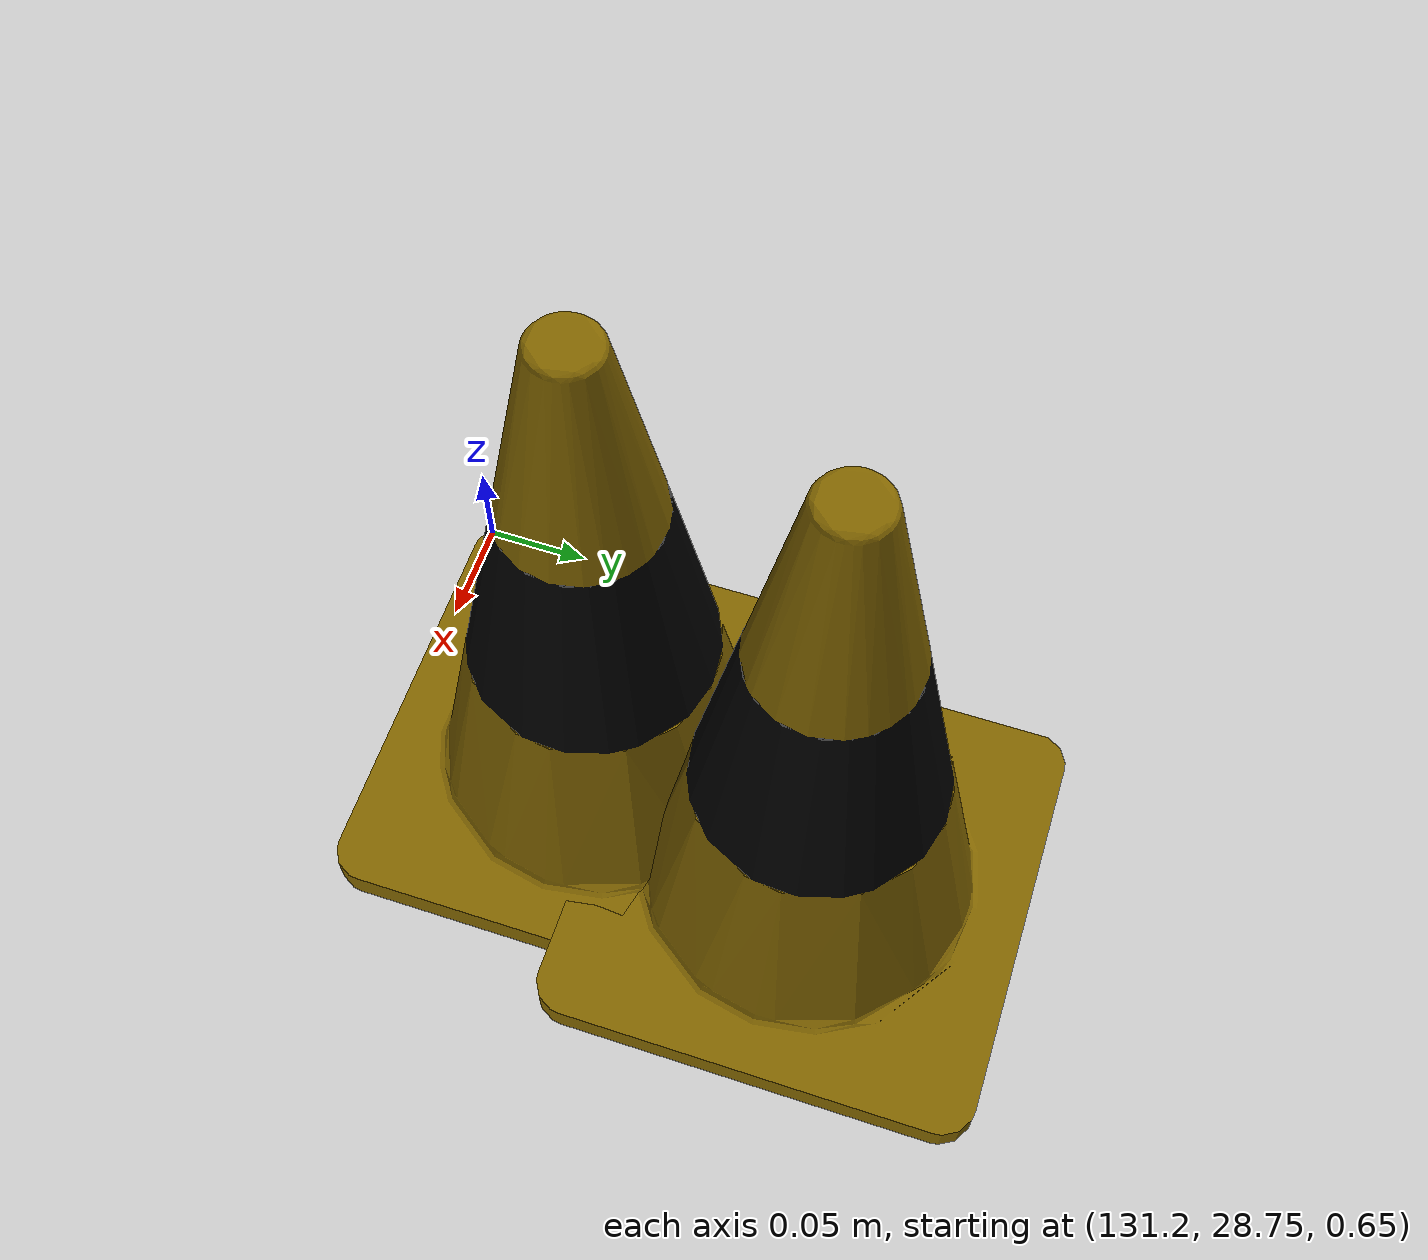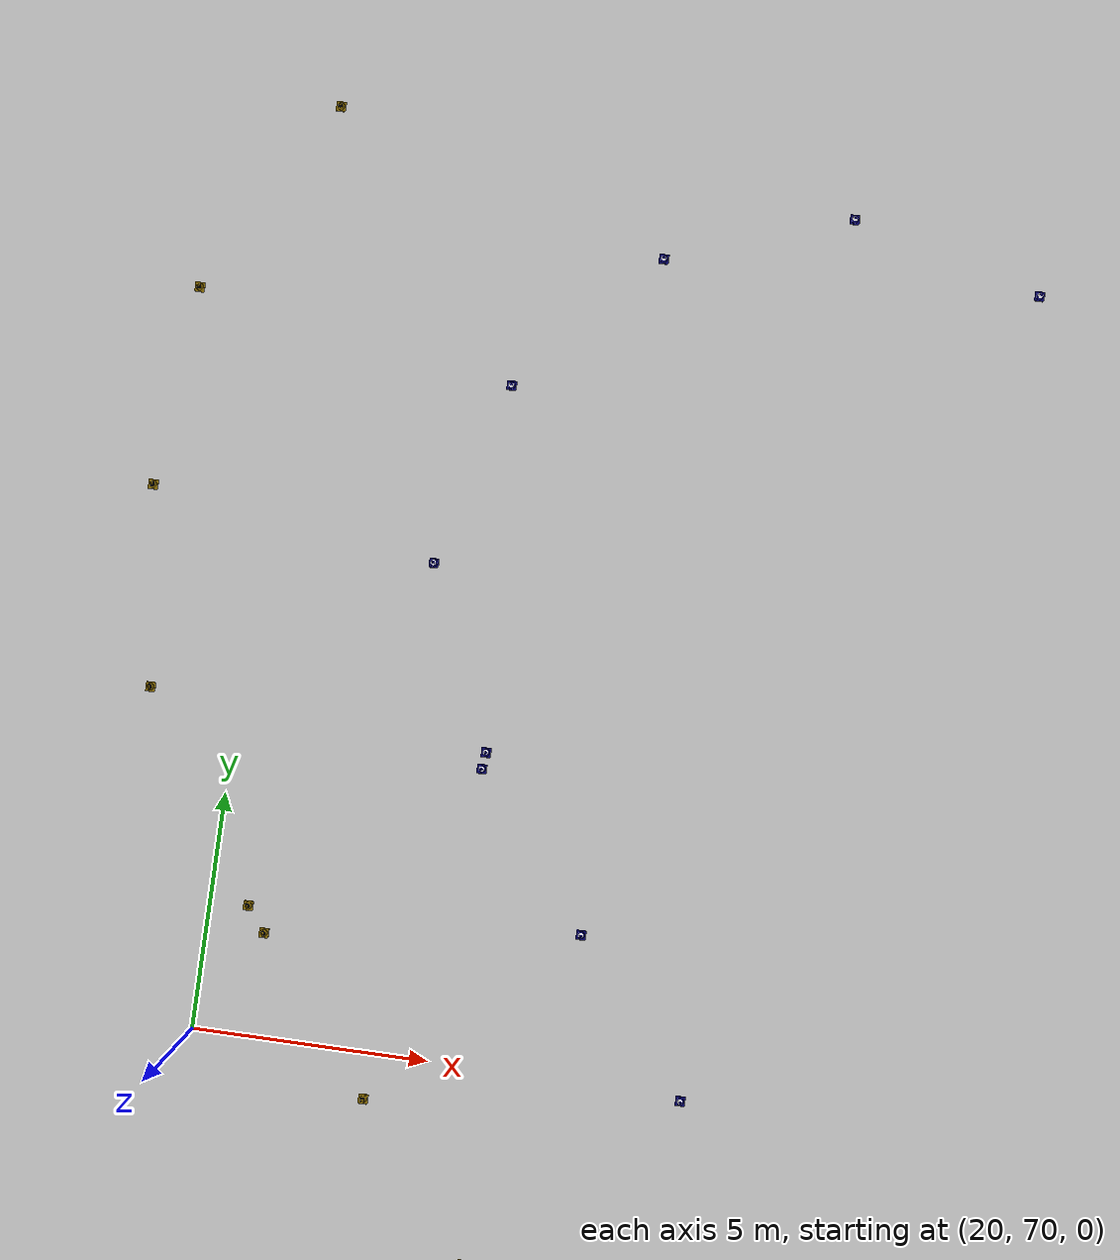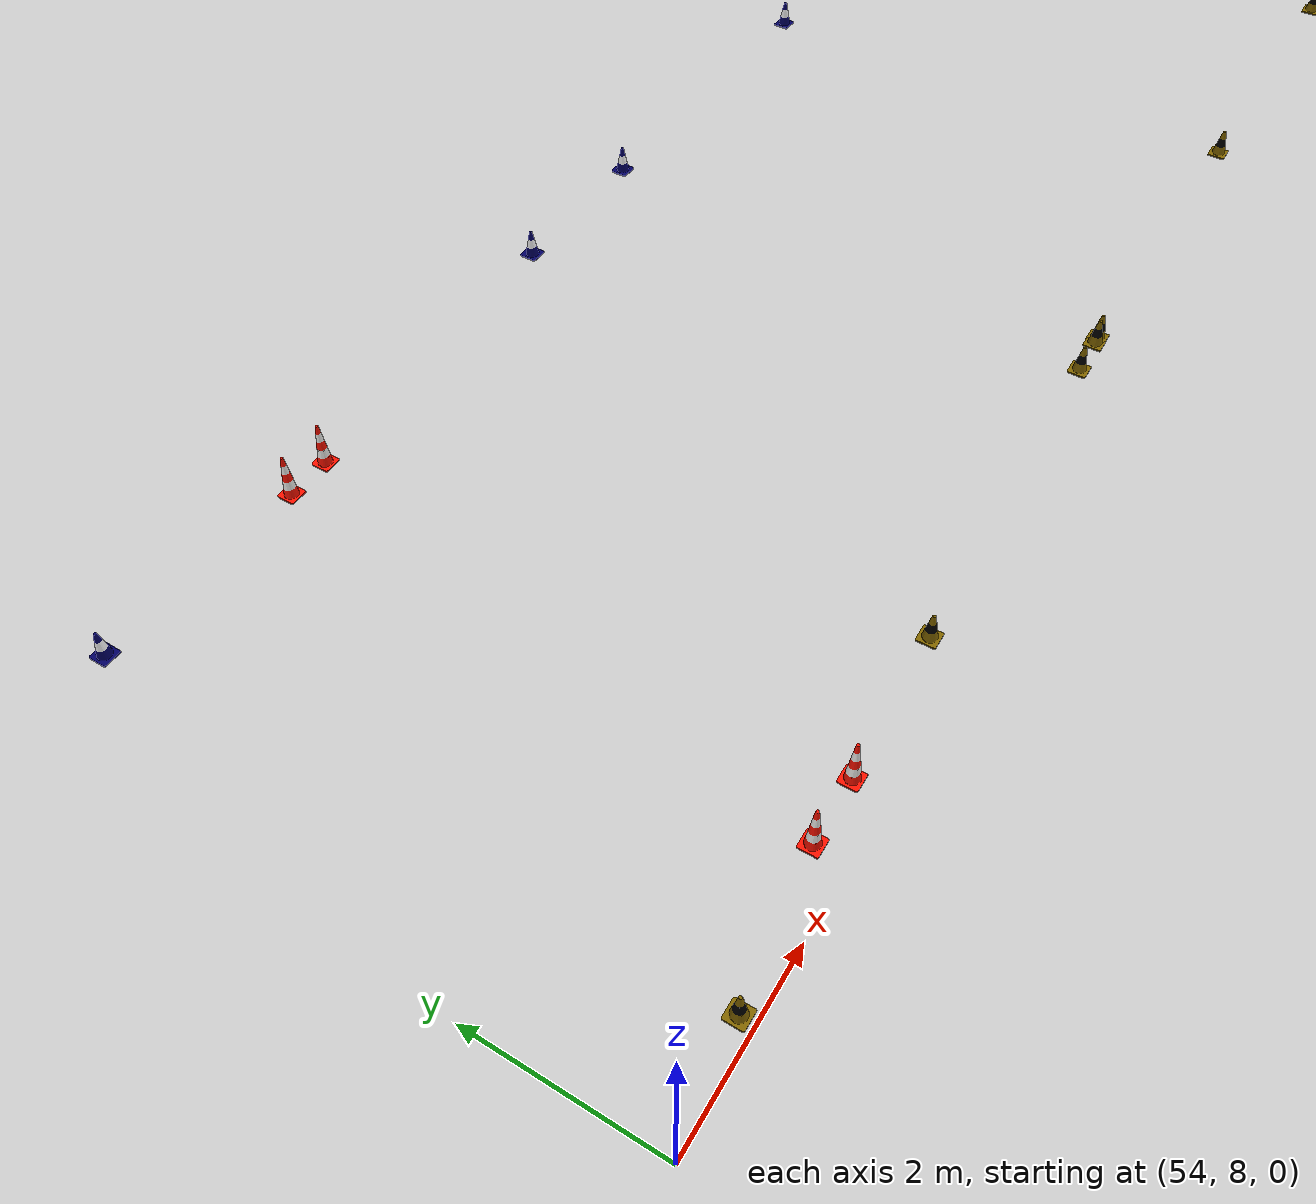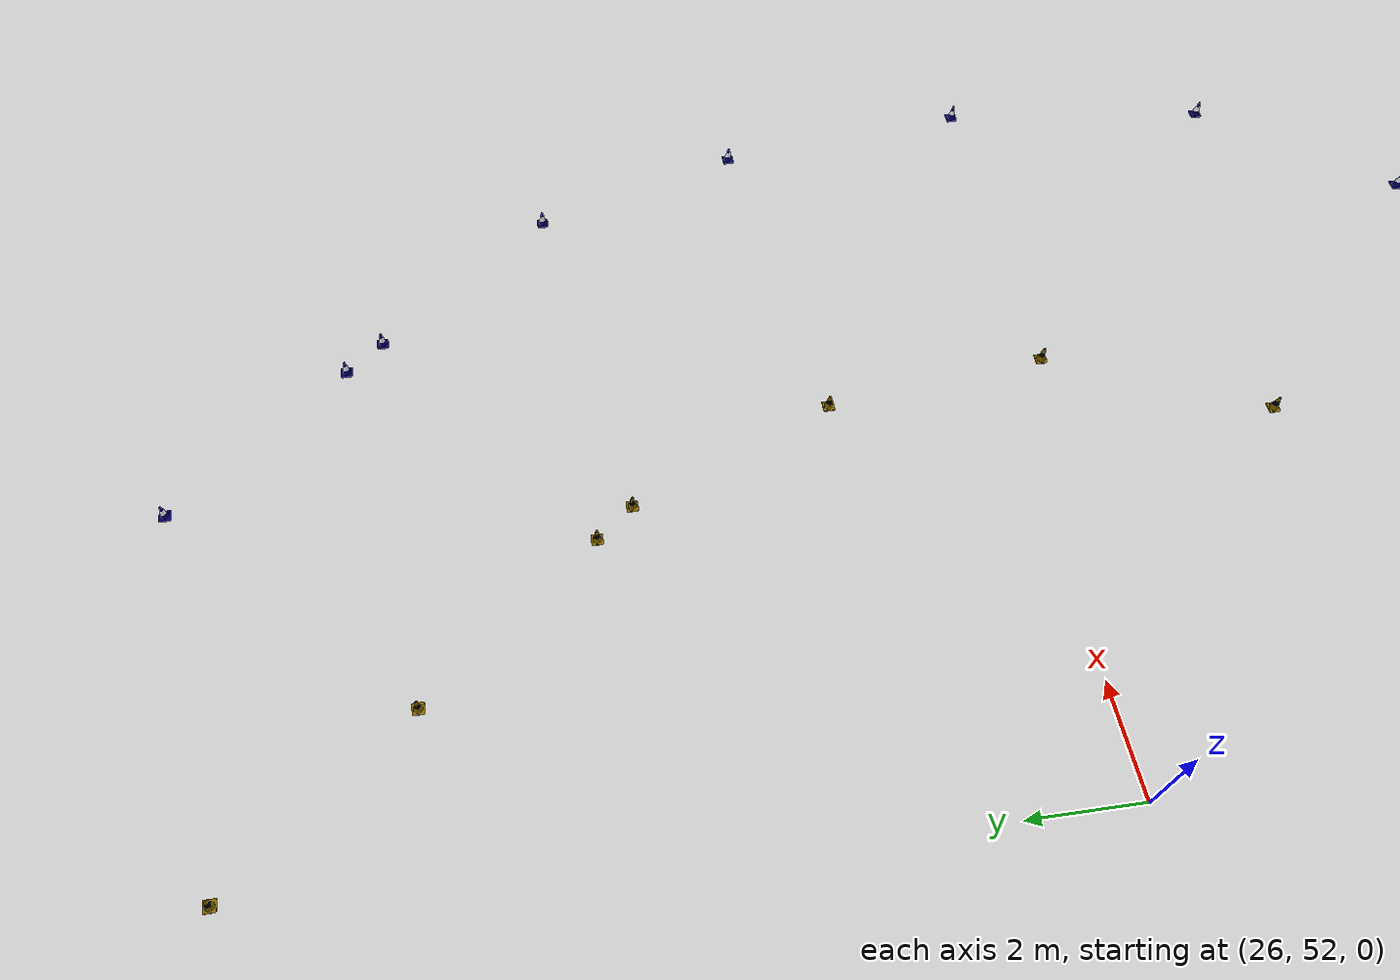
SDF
<?xml version="1.0"?>
<sdf version='1.6'>
  <world name='medium_track'>
    <gui fullscreen='0'>
      <camera name='user_camera'>
        <pose frame=''>-40 40 20 0 0.667643 -1</pose>
        <view_controller>orbit</view_controller> <projection_type>perspective</projection_type>
      </camera>
    </gui>

    <!-- WORLD SETTINGS -->
    <scene>
	<sky>
	    <clouds>
		<speed>3</speed>
	    </clouds>
	</sky>
      <ambient>1.0 1.0 1.0 1.0</ambient>
      <shadows>false</shadows>
    </scene>

    <light name='sun' type='directional'>
      <cast_shadows>1</cast_shadows>
      <pose frame=''>0 0 10 0 -0 0</pose>
      <diffuse>0.8 0.8 0.8 1</diffuse>
      <specular>0.1 0.1 0.1 1</specular>
      <attenuation>
        <range>1000</range>
        <constant>0.9</constant>
        <linear>0.01</linear>
        <quadratic>0.001</quadratic>
      </attenuation>
      <direction>-0.5 0.5 -1</direction>
    </light>

    <!-- MODELS -->
    <include>
	<uri>model://ground_plane</uri>
	<pose>0.0 0.0 0.0 0 0 0</pose>
    </include>

    <include>
	<uri>model://medium_track</uri>
	<pose>0.0 0.0 0.5 0 0 0</pose>
    </include>

  </world>
</sdf>

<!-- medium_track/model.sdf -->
<sdf version='1.6'>
  <model name='track'>

    <include>
      <pose>54.8640660505 14.4194657942 0.15 0 0 0</pose>
      <uri>model://blue_cone</uri>
      <name>blue_cone_1</name>

      <covariance x="0.01" y="0.01" xy="0.0"/>

    </include>

    <include>
      <pose>61.4459179142 14.4339676282 0.15 0 0 0</pose>
      <uri>model://blue_cone</uri>
      <name>blue_cone_2</name>

      <covariance x="0.01" y="0.01" xy="0.0"/>

    </include>

    <include>
      <pose>63.346182311 14.4285031704 0.15 0 0 0</pose>
      <uri>model://blue_cone</uri>
      <name>blue_cone_3</name>

      <covariance x="0.01" y="0.01" xy="0.0"/>

    </include>

    <include>
      <pose>67.3572559385 14.3727334595 0.15 0 0 0</pose>
      <uri>model://blue_cone</uri>
      <name>blue_cone_4</name>

      <covariance x="0.01" y="0.01" xy="0.0"/>

    </include>

    <include>
      <pose>71.3683295661 14.3169637487 0.15 0 0 0</pose>
      <uri>model://blue_cone</uri>
      <name>blue_cone_5</name>

      <covariance x="0.01" y="0.01" xy="0.0"/>

    </include>

    <include>
      <pose>75.3794031936 14.2611940378 0.15 0 0 0</pose>
      <uri>model://blue_cone</uri>
      <name>blue_cone_6</name>

      <covariance x="0.01" y="0.01" xy="0.0"/>

    </include>

    <include>
      <pose>79.3904768211 14.205424327 0.15 0 0 0</pose>
      <uri>model://blue_cone</uri>
      <name>blue_cone_7</name>

      <covariance x="0.01" y="0.01" xy="0.0"/>

    </include>

    <include>
      <pose>83.4015504487 14.1496546161 0.15 0 0 0</pose>
      <uri>model://blue_cone</uri>
      <name>blue_cone_8</name>

      <covariance x="0.01" y="0.01" xy="0.0"/>

    </include>

    <include>
      <pose>87.4126240762 14.0938849052 0.15 0 0 0</pose>
      <uri>model://blue_cone</uri>
      <name>blue_cone_9</name>

      <covariance x="0.01" y="0.01" xy="0.0"/>

    </include>

    <include>
      <pose>91.4236977038 14.0381151944 0.15 0 0 0</pose>
      <uri>model://blue_cone</uri>
      <name>blue_cone_10</name>

      <covariance x="0.01" y="0.01" xy="0.0"/>

    </include>

    <include>
      <pose>95.4347713313 13.9823454835 0.15 0 0 0</pose>
      <uri>model://blue_cone</uri>
      <name>blue_cone_11</name>

      <covariance x="0.01" y="0.01" xy="0.0"/>

    </include>

    <include>
      <pose>99.4458449589 13.9265757726 0.15 0 0 0</pose>
      <uri>model://blue_cone</uri>
      <name>blue_cone_12</name>

      <covariance x="0.01" y="0.01" xy="0.0"/>

    </include>

    <include>
      <pose>103.665151918 13.8679107989 0.15 0 0 0</pose>
      <uri>model://blue_cone</uri>
      <name>blue_cone_13</name>

      <covariance x="0.01" y="0.01" xy="0.0"/>

    </include>

    <include>
      <pose>107.877181411 14.4055221868 0.15 0 0 0</pose>
      <uri>model://blue_cone</uri>
      <name>blue_cone_14</name>

      <covariance x="0.01" y="0.01" xy="0.0"/>

    </include>

    <include>
      <pose>111.853819387 16.0448366449 0.15 0 0 0</pose>
      <uri>model://blue_cone</uri>
      <name>blue_cone_15</name>

      <covariance x="0.01" y="0.01" xy="0.0"/>

    </include>

    <include>
      <pose>115.713191389 17.9749398622 0.15 0 0 0</pose>
      <uri>model://blue_cone</uri>
      <name>blue_cone_16</name>

      <covariance x="0.01" y="0.01" xy="0.0"/>

    </include>

    <include>
      <pose>118.912741211 20.9499875138 0.15 0 0 0</pose>
      <uri>model://blue_cone</uri>
      <name>blue_cone_17</name>

      <covariance x="0.01" y="0.01" xy="0.0"/>

    </include>

    <include>
      <pose>121.75588841 23.8229705265 0.15 0 0 0</pose>
      <uri>model://blue_cone</uri>
      <name>blue_cone_18</name>

      <covariance x="0.01" y="0.01" xy="0.0"/>

    </include>

    <include>
      <pose>122.635566513 27.7669327242 0.15 0 0 0</pose>
      <uri>model://blue_cone</uri>
      <name>blue_cone_19</name>

      <covariance x="0.01" y="0.01" xy="0.0"/>

    </include>

    <include>
      <pose>123.33369453 28.9589166481 0.15 0 0 0</pose>
      <uri>model://blue_cone</uri>
      <name>blue_cone_20</name>

      <covariance x="0.01" y="0.01" xy="0.0"/>

    </include>

    <include>
      <pose>124.443512212 32.9043449892 0.15 0 0 0</pose>
      <uri>model://blue_cone</uri>
      <name>blue_cone_21</name>

      <covariance x="0.01" y="0.01" xy="0.0"/>

    </include>

    <include>
      <pose>125.553329894 36.8497733303 0.15 0 0 0</pose>
      <uri>model://blue_cone</uri>
      <name>blue_cone_22</name>

      <covariance x="0.01" y="0.01" xy="0.0"/>

    </include>

    <include>
      <pose>126.663147576 40.7952016714 0.15 0 0 0</pose>
      <uri>model://blue_cone</uri>
      <name>blue_cone_23</name>

      <covariance x="0.01" y="0.01" xy="0.0"/>

    </include>

    <include>
      <pose>127.772965258 44.7406300125 0.15 0 0 0</pose>
      <uri>model://blue_cone</uri>
      <name>blue_cone_24</name>

      <covariance x="0.01" y="0.01" xy="0.0"/>

    </include>

    <include>
      <pose>128.88278294 48.6860583536 0.15 0 0 0</pose>
      <uri>model://blue_cone</uri>
      <name>blue_cone_25</name>

      <covariance x="0.01" y="0.01" xy="0.0"/>

    </include>

    <include>
      <pose>129.992600622 52.6314866947 0.15 0 0 0</pose>
      <uri>model://blue_cone</uri>
      <name>blue_cone_26</name>

      <covariance x="0.01" y="0.01" xy="0.0"/>

    </include>

    <include>
      <pose>131.102418304 56.5769150358 0.15 0 0 0</pose>
      <uri>model://blue_cone</uri>
      <name>blue_cone_27</name>

      <covariance x="0.01" y="0.01" xy="0.0"/>

    </include>

    <include>
      <pose>132.212235986 60.5223433769 0.15 0 0 0</pose>
      <uri>model://blue_cone</uri>
      <name>blue_cone_28</name>

      <covariance x="0.01" y="0.01" xy="0.0"/>

    </include>

    <include>
      <pose>133.322053668 64.467771718 0.15 0 0 0</pose>
      <uri>model://blue_cone</uri>
      <name>blue_cone_29</name>

      <covariance x="0.01" y="0.01" xy="0.0"/>

    </include>

    <include>
      <pose>134.116375603 67.3058449825 0.15 0 0 0</pose>
      <uri>model://blue_cone</uri>
      <name>blue_cone_30</name>

      <covariance x="0.01" y="0.01" xy="0.0"/>

    </include>

    <include>
      <pose>134.279303286 71.4187810742 0.15 0 0 0</pose>
      <uri>model://blue_cone</uri>
      <name>blue_cone_31</name>

      <covariance x="0.01" y="0.01" xy="0.0"/>

    </include>

    <include>
      <pose>132.493761201 75.1436076356 0.15 0 0 0</pose>
      <uri>model://blue_cone</uri>
      <name>blue_cone_32</name>

      <covariance x="0.01" y="0.01" xy="0.0"/>

    </include>

    <include>
      <pose>128.9743775 77.3380332482 0.15 0 0 0</pose>
      <uri>model://blue_cone</uri>
      <name>blue_cone_33</name>

      <covariance x="0.01" y="0.01" xy="0.0"/>

    </include>

    <include>
      <pose>127.016211537 78.1062198615 0.15 0 0 0</pose>
      <uri>model://blue_cone</uri>
      <name>blue_cone_34</name>

      <covariance x="0.01" y="0.01" xy="0.0"/>

    </include>

    <include>
      <pose>123.043756221 78.6642706393 0.15 0 0 0</pose>
      <uri>model://blue_cone</uri>
      <name>blue_cone_35</name>

      <covariance x="0.01" y="0.01" xy="0.0"/>

    </include>

    <include>
      <pose>119.071300905 79.2223214172 0.15 0 0 0</pose>
      <uri>model://blue_cone</uri>
      <name>blue_cone_36</name>

      <covariance x="0.01" y="0.01" xy="0.0"/>

    </include>

    <include>
      <pose>115.098845589 79.780372195 0.15 0 0 0</pose>
      <uri>model://blue_cone</uri>
      <name>blue_cone_37</name>

      <covariance x="0.01" y="0.01" xy="0.0"/>

    </include>

    <include>
      <pose>111.126390274 80.3384229729 0.15 0 0 0</pose>
      <uri>model://blue_cone</uri>
      <name>blue_cone_38</name>

      <covariance x="0.01" y="0.01" xy="0.0"/>

    </include>

    <include>
      <pose>107.198752394 80.8893976904 0.15 0 0 0</pose>
      <uri>model://blue_cone</uri>
      <name>blue_cone_39</name>

      <covariance x="0.01" y="0.01" xy="0.0"/>

    </include>

    <include>
      <pose>103.167413345 80.7239417737 0.15 0 0 0</pose>
      <uri>model://blue_cone</uri>
      <name>blue_cone_40</name>

      <covariance x="0.01" y="0.01" xy="0.0"/>

    </include>

    <include>
      <pose>99.5009342937 79.0263397229 0.15 0 0 0</pose>
      <uri>model://blue_cone</uri>
      <name>blue_cone_41</name>

      <covariance x="0.01" y="0.01" xy="0.0"/>

    </include>

    <include>
      <pose>96.2611236849 76.6116932514 0.15 0 0 0</pose>
      <uri>model://blue_cone</uri>
      <name>blue_cone_42</name>

      <covariance x="0.01" y="0.01" xy="0.0"/>

    </include>

    <include>
      <pose>94.4485946206 73.0305190702 0.15 0 0 0</pose>
      <uri>model://blue_cone</uri>
      <name>blue_cone_43</name>

      <covariance x="0.01" y="0.01" xy="0.0"/>

    </include>

    <include>
      <pose>90.568678866 68.9744353446 0.15 0 0 0</pose>
      <uri>model://blue_cone</uri>
      <name>blue_cone_44</name>

      <covariance x="0.01" y="0.01" xy="0.0"/>

    </include>

    <include>
      <pose>90.8689091248 64.9185363194 0.15 0 0 0</pose>
      <uri>model://blue_cone</uri>
      <name>blue_cone_45</name>

      <covariance x="0.01" y="0.01" xy="0.0"/>

    </include>

    <include>
      <pose>87.3221000547 62.3945158469 0.15 0 0 0</pose>
      <uri>model://blue_cone</uri>
      <name>blue_cone_46</name>

      <covariance x="0.01" y="0.01" xy="0.0"/>

    </include>

    <include>
      <pose>83.3891044989 59.9956448527 0.15 0 0 0</pose>
      <uri>model://blue_cone</uri>
      <name>blue_cone_47</name>

      <covariance x="0.01" y="0.01" xy="0.0"/>

    </include>

    <include>
      <pose>79.408758737 59.5825001797 0.15 0 0 0</pose>
      <uri>model://blue_cone</uri>
      <name>blue_cone_48</name>

      <covariance x="0.01" y="0.01" xy="0.0"/>

    </include>

    <include>
      <pose>76.4031631572 60.061922813 0.15 0 0 0</pose>
      <uri>model://blue_cone</uri>
      <name>blue_cone_49</name>

      <covariance x="0.01" y="0.01" xy="0.0"/>

    </include>

    <include>
      <pose>72.2557115646 61.2852625776 0.15 0 0 0</pose>
      <uri>model://blue_cone</uri>
      <name>blue_cone_50</name>

      <covariance x="0.01" y="0.01" xy="0.0"/>

    </include>

    <include>
      <pose>68.0407905943 64.2178490096 0.15 0 0 0</pose>
      <uri>model://blue_cone</uri>
      <name>blue_cone_51</name>

      <covariance x="0.01" y="0.01" xy="0.0"/>

    </include>

    <include>
      <pose>67.9476450419 64.2846328939 0.15 0 0 0</pose>
      <uri>model://blue_cone</uri>
      <name>blue_cone_52</name>

      <covariance x="0.01" y="0.01" xy="0.0"/>

    </include>

    <include>
      <pose>64.6875507059 66.6220688453 0.15 0 0 0</pose>
      <uri>model://blue_cone</uri>
      <name>blue_cone_53</name>

      <covariance x="0.01" y="0.01" xy="0.0"/>

    </include>

    <include>
      <pose>61.4274563699 68.9595047967 0.15 0 0 0</pose>
      <uri>model://blue_cone</uri>
      <name>blue_cone_54</name>

      <covariance x="0.01" y="0.01" xy="0.0"/>

    </include>

    <include>
      <pose>58.167362034 71.296940748 0.15 0 0 0</pose>
      <uri>model://blue_cone</uri>
      <name>blue_cone_55</name>

      <covariance x="0.01" y="0.01" xy="0.0"/>

    </include>

    <include>
      <pose>54.907267698 73.6343766994 0.15 0 0 0</pose>
      <uri>model://blue_cone</uri>
      <name>blue_cone_56</name>

      <covariance x="0.01" y="0.01" xy="0.0"/>

    </include>

    <include>
      <pose>51.647173362 75.9718126508 0.15 0 0 0</pose>
      <uri>model://blue_cone</uri>
      <name>blue_cone_57</name>

      <covariance x="0.01" y="0.01" xy="0.0"/>

    </include>

    <include>
      <pose>48.3870790261 78.3092486022 0.15 0 0 0</pose>
      <uri>model://blue_cone</uri>
      <name>blue_cone_58</name>

      <covariance x="0.01" y="0.01" xy="0.0"/>

    </include>

    <include>
      <pose>45.1269846901 80.6466845536 0.15 0 0 0</pose>
      <uri>model://blue_cone</uri>
      <name>blue_cone_59</name>

      <covariance x="0.01" y="0.01" xy="0.0"/>

    </include>

    <include>
      <pose>41.8668903541 82.984120505 0.15 0 0 0</pose>
      <uri>model://blue_cone</uri>
      <name>blue_cone_60</name>

      <covariance x="0.01" y="0.01" xy="0.0"/>

    </include>

    <include>
      <pose>38.6067960182 85.3215564563 0.15 0 0 0</pose>
      <uri>model://blue_cone</uri>
      <name>blue_cone_61</name>

      <covariance x="0.01" y="0.01" xy="0.0"/>

    </include>

    <include>
      <pose>35.369398626 87.6427190589 0.15 0 0 0</pose>
      <uri>model://blue_cone</uri>
      <name>blue_cone_62</name>

      <covariance x="0.01" y="0.01" xy="0.0"/>

    </include>

    <include>
      <pose>31.3502506585 88.6763999704 0.15 0 0 0</pose>
      <uri>model://blue_cone</uri>
      <name>blue_cone_63</name>

      <covariance x="0.01" y="0.01" xy="0.0"/>

    </include>

    <include>
      <pose>27.5419839085 87.3122415306 0.15 0 0 0</pose>
      <uri>model://blue_cone</uri>
      <name>blue_cone_64</name>

      <covariance x="0.01" y="0.01" xy="0.0"/>

    </include>

    <include>
      <pose>24.7843466023 84.273120073 0.15 0 0 0</pose>
      <uri>model://blue_cone</uri>
      <name>blue_cone_65</name>

      <covariance x="0.01" y="0.01" xy="0.0"/>

    </include>

    <include>
      <pose>23.7044764328 80.4009598616 0.15 0 0 0</pose>
      <uri>model://blue_cone</uri>
      <name>blue_cone_66</name>

      <covariance x="0.01" y="0.01" xy="0.0"/>

    </include>

    <include>
      <pose>25.3278481581 76.6597443867 0.15 0 0 0</pose>
      <uri>model://blue_cone</uri>
      <name>blue_cone_67</name>

      <covariance x="0.01" y="0.01" xy="0.0"/>

    </include>

    <include>
      <pose>25.2887461937 76.3094512555 0.15 0 0 0</pose>
      <uri>model://blue_cone</uri>
      <name>blue_cone_68</name>

      <covariance x="0.01" y="0.01" xy="0.0"/>

    </include>

    <include>
      <pose>27.8110154151 73.1870834492 0.15 0 0 0</pose>
      <uri>model://blue_cone</uri>
      <name>blue_cone_69</name>

      <covariance x="0.01" y="0.01" xy="0.0"/>

    </include>

    <include>
      <pose>30.3332846365 70.0647156429 0.15 0 0 0</pose>
      <uri>model://blue_cone</uri>
      <name>blue_cone_70</name>

      <covariance x="0.01" y="0.01" xy="0.0"/>

    </include>

    <include>
      <pose>32.8555538579 66.9423478366 0.15 0 0 0</pose>
      <uri>model://blue_cone</uri>
      <name>blue_cone_71</name>

      <covariance x="0.01" y="0.01" xy="0.0"/>

    </include>

    <include>
      <pose>35.3778230793 63.8199800303 0.15 0 0 0</pose>
      <uri>model://blue_cone</uri>
      <name>blue_cone_72</name>

      <covariance x="0.01" y="0.01" xy="0.0"/>

    </include>

    <include>
      <pose>35.9199848019 63.1496424597 0.15 0 0 0</pose>
      <uri>model://blue_cone</uri>
      <name>blue_cone_73</name>

      <covariance x="0.01" y="0.01" xy="0.0"/>

    </include>

    <include>
      <pose>38.3858187355 59.944742754 0.15 0 0 0</pose>
      <uri>model://blue_cone</uri>
      <name>blue_cone_74</name>

      <covariance x="0.01" y="0.01" xy="0.0"/>

    </include>

    <include>
      <pose>39.5310844457 56.0777501712 0.15 0 0 0</pose>
      <uri>model://blue_cone</uri>
      <name>blue_cone_75</name>

      <covariance x="0.01" y="0.01" xy="0.0"/>

    </include>

    <include>
      <pose>40.0299384177 51.3217826951 0.15 0 0 0</pose>
      <uri>model://blue_cone</uri>
      <name>blue_cone_76</name>

      <covariance x="0.01" y="0.01" xy="0.0"/>

    </include>

    <include>
      <pose>39.4207553458 46.316372633 0.15 0 0 0</pose>
      <uri>model://blue_cone</uri>
      <name>blue_cone_77</name>

      <covariance x="0.01" y="0.01" xy="0.0"/>

    </include>

    <include>
      <pose>36.9688951409 43.1030590311 0.15 0 0 0</pose>
      <uri>model://blue_cone</uri>
      <name>blue_cone_78</name>

      <covariance x="0.01" y="0.01" xy="0.0"/>

    </include>

    <include>
      <pose>35.0071325719 39.6065057033 0.15 0 0 0</pose>
      <uri>model://blue_cone</uri>
      <name>blue_cone_79</name>

      <covariance x="0.01" y="0.01" xy="0.0"/>

    </include>

    <include>
      <pose>31.5300056567 37.6202697804 0.15 0 0 0</pose>
      <uri>model://blue_cone</uri>
      <name>blue_cone_80</name>

      <covariance x="0.01" y="0.01" xy="0.0"/>

    </include>

    <include>
      <pose>28.3311352733 35.1368579598 0.15 0 0 0</pose>
      <uri>model://blue_cone</uri>
      <name>blue_cone_81</name>

      <covariance x="0.01" y="0.01" xy="0.0"/>

    </include>

    <include>
      <pose>24.3028182405 34.5363781806 0.15 0 0 0</pose>
      <uri>model://blue_cone</uri>
      <name>blue_cone_82</name>

      <covariance x="0.01" y="0.01" xy="0.0"/>

    </include>

    <include>
      <pose>20.2742686408 33.9422730237 0.15 0 0 0</pose>
      <uri>model://blue_cone</uri>
      <name>blue_cone_83</name>

      <covariance x="0.01" y="0.01" xy="0.0"/>

    </include>

    <include>
      <pose>16.8117011238 31.9328992829 0.15 0 0 0</pose>
      <uri>model://blue_cone</uri>
      <name>blue_cone_84</name>

      <covariance x="0.01" y="0.01" xy="0.0"/>

    </include>

    <include>
      <pose>14.479469911 28.5783566129 0.15 0 0 0</pose>
      <uri>model://blue_cone</uri>
      <name>blue_cone_85</name>

      <covariance x="0.01" y="0.01" xy="0.0"/>

    </include>

    <include>
      <pose>13.0839365731 24.7992575031 0.15 0 0 0</pose>
      <uri>model://blue_cone</uri>
      <name>blue_cone_86</name>

      <covariance x="0.01" y="0.01" xy="0.0"/>

    </include>

    <include>
      <pose>13.4484217208 20.7073072599 0.15 0 0 0</pose>
      <uri>model://blue_cone</uri>
      <name>blue_cone_87</name>

      <covariance x="0.01" y="0.01" xy="0.0"/>

    </include>

    <include>
      <pose>15.2842271234 17.1526531836 0.15 0 0 0</pose>
      <uri>model://blue_cone</uri>
      <name>blue_cone_88</name>

      <covariance x="0.01" y="0.01" xy="0.0"/>

    </include>

    <include>
      <pose>17.8628835059 14.0661705375 0.15 0 0 0</pose>
      <uri>model://blue_cone</uri>
      <name>blue_cone_89</name>

      <covariance x="0.01" y="0.01" xy="0.0"/>

    </include>

    <include>
      <pose>21.8840012838 13.1984065113 0.15 0 0 0</pose>
      <uri>model://blue_cone</uri>
      <name>blue_cone_90</name>

      <covariance x="0.01" y="0.01" xy="0.0"/>

    </include>

    <include>
      <pose>25.9252488739 13.0857868292 0.15 0 0 0</pose>
      <uri>model://blue_cone</uri>
      <name>blue_cone_91</name>

      <covariance x="0.01" y="0.01" xy="0.0"/>

    </include>

    <include>
      <pose>29.9449092174 13.2283514991 0.15 0 0 0</pose>
      <uri>model://blue_cone</uri>
      <name>blue_cone_92</name>

      <covariance x="0.01" y="0.01" xy="0.0"/>

    </include>

    <include>
      <pose>33.964569561 13.370916169 0.15 0 0 0</pose>
      <uri>model://blue_cone</uri>
      <name>blue_cone_93</name>

      <covariance x="0.01" y="0.01" xy="0.0"/>

    </include>

    <include>
      <pose>37.9842299046 13.5134808389 0.15 0 0 0</pose>
      <uri>model://blue_cone</uri>
      <name>blue_cone_94</name>

      <covariance x="0.01" y="0.01" xy="0.0"/>

    </include>

    <include>
      <pose>42.0038902482 13.6560455088 0.15 0 0 0</pose>
      <uri>model://blue_cone</uri>
      <name>blue_cone_95</name>

      <covariance x="0.01" y="0.01" xy="0.0"/>

    </include>

    <include>
      <pose>46.0235505917 13.7986101788 0.15 0 0 0</pose>
      <uri>model://blue_cone</uri>
      <name>blue_cone_96</name>

      <covariance x="0.01" y="0.01" xy="0.0"/>

    </include>

    <include>
      <pose>50.0432109353 13.9411748487 0.15 0 0 0</pose>
      <uri>model://blue_cone</uri>
      <name>blue_cone_97</name>

      <covariance x="0.01" y="0.01" xy="0.0"/>

    </include>

    <include>
      <pose>58.8457931083 8.29495250737 0.15 0 0 0</pose>
      <uri>model://yellow_cone</uri>
      <name>yellow_cone_99</name>

      <covariance x="0.01" y="0.01" xy="0.0"/>

    </include>

    <include>
      <pose>62.8640660505 8.41946579422 0.15 0 0 0</pose>
      <uri>model://yellow_cone</uri>
      <name>yellow_cone_100</name>

      <covariance x="0.01" y="0.01" xy="0.0"/>

    </include>

    <include>
      <pose>63.4459179142 8.43396762816 0.15 0 0 0</pose>
      <uri>model://yellow_cone</uri>
      <name>yellow_cone_101</name>

      <covariance x="0.01" y="0.01" xy="0.0"/>

    </include>

    <include>
      <pose>63.346182311 8.42850317041 0.15 0 0 0</pose>
      <uri>model://yellow_cone</uri>
      <name>yellow_cone_102</name>

      <covariance x="0.01" y="0.01" xy="0.0"/>

    </include>

    <include>
      <pose>67.4718580422 8.37114003924 0.15 0 0 0</pose>
      <uri>model://yellow_cone</uri>
      <name>yellow_cone_103</name>

      <covariance x="0.01" y="0.01" xy="0.0"/>

    </include>

    <include>
      <pose>71.4829316697 8.31537032838 0.15 0 0 0</pose>
      <uri>model://yellow_cone</uri>
      <name>yellow_cone_104</name>

      <covariance x="0.01" y="0.01" xy="0.0"/>

    </include>

    <include>
      <pose>75.4940052972 8.25960061751 0.15 0 0 0</pose>
      <uri>model://yellow_cone</uri>
      <name>yellow_cone_105</name>

      <covariance x="0.01" y="0.01" xy="0.0"/>

    </include>

    <include>
      <pose>79.5050789248 8.20383090665 0.15 0 0 0</pose>
      <uri>model://yellow_cone</uri>
      <name>yellow_cone_106</name>

      <covariance x="0.01" y="0.01" xy="0.0"/>

    </include>

    <include>
      <pose>83.5161525523 8.14806119578 0.15 0 0 0</pose>
      <uri>model://yellow_cone</uri>
      <name>yellow_cone_107</name>

      <covariance x="0.01" y="0.01" xy="0.0"/>

    </include>

    <include>
      <pose>87.5272261799 8.09229148492 0.15 0 0 0</pose>
      <uri>model://yellow_cone</uri>
      <name>yellow_cone_108</name>

      <covariance x="0.01" y="0.01" xy="0.0"/>

    </include>

    <include>
      <pose>91.5382998074 8.03652177405 0.15 0 0 0</pose>
      <uri>model://yellow_cone</uri>
      <name>yellow_cone_109</name>

      <covariance x="0.01" y="0.01" xy="0.0"/>

    </include>

    <include>
      <pose>95.549373435 7.98075206319 0.15 0 0 0</pose>
      <uri>model://yellow_cone</uri>
      <name>yellow_cone_110</name>

      <covariance x="0.01" y="0.01" xy="0.0"/>

    </include>

    <include>
      <pose>99.5604470625 7.92498235233 0.15 0 0 0</pose>
      <uri>model://yellow_cone</uri>
      <name>yellow_cone_111</name>

      <covariance x="0.01" y="0.01" xy="0.0"/>

    </include>

    <include>
      <pose>103.665151918 7.86791079887 0.15 0 0 0</pose>
      <uri>model://yellow_cone</uri>
      <name>yellow_cone_112</name>

      <covariance x="0.01" y="0.01" xy="0.0"/>

    </include>

    <include>
      <pose>107.720407945 8.04502275791 0.15 0 0 0</pose>
      <uri>model://yellow_cone</uri>
      <name>yellow_cone_113</name>

      <covariance x="0.01" y="0.01" xy="0.0"/>

    </include>

    <include>
      <pose>112.992957421 8.95790203377 0.15 0 0 0</pose>
      <uri>model://yellow_cone</uri>
      <name>yellow_cone_114</name>

      <covariance x="0.01" y="0.01" xy="0.0"/>

    </include>

    <include>
      <pose>117.033844379 10.6190041313 0.15 0 0 0</pose>
      <uri>model://yellow_cone</uri>
      <name>yellow_cone_115</name>

      <covariance x="0.01" y="0.01" xy="0.0"/>

    </include>

    <include>
      <pose>121.012120821 13.4514966942 0.15 0 0 0</pose>
      <uri>model://yellow_cone</uri>
      <name>yellow_cone_116</name>

      <covariance x="0.01" y="0.01" xy="0.0"/>

    </include>

    <include>
      <pose>124.316401522 16.3097753091 0.15 0 0 0</pose>
      <uri>model://yellow_cone</uri>
      <name>yellow_cone_117</name>

      <covariance x="0.01" y="0.01" xy="0.0"/>

    </include>

    <include>
      <pose>127.057215718 20.7121223123 0.15 0 0 0</pose>
      <uri>model://yellow_cone</uri>
      <name>yellow_cone_118</name>

      <covariance x="0.01" y="0.01" xy="0.0"/>

    </include>

    <include>
      <pose>129.784289235 23.7527434048 0.15 0 0 0</pose>
      <uri>model://yellow_cone</uri>
      <name>yellow_cone_119</name>

      <covariance x="0.01" y="0.01" xy="0.0"/>

    </include>

    <include>
      <pose>131.302866261 28.8493214164 0.15 0 0 0</pose>
      <uri>model://yellow_cone</uri>
      <name>yellow_cone_120</name>

      <covariance x="0.01" y="0.01" xy="0.0"/>

    </include>

    <include>
      <pose>131.33369453 28.9589166481 0.15 0 0 0</pose>
      <uri>model://yellow_cone</uri>
      <name>yellow_cone_121</name>

      <covariance x="0.01" y="0.01" xy="0.0"/>

    </include>

    <include>
      <pose>132.443512212 32.9043449892 0.15 0 0 0</pose>
      <uri>model://yellow_cone</uri>
      <name>yellow_cone_122</name>

      <covariance x="0.01" y="0.01" xy="0.0"/>

    </include>

    <include>
      <pose>133.553329894 36.8497733303 0.15 0 0 0</pose>
      <uri>model://yellow_cone</uri>
      <name>yellow_cone_123</name>

      <covariance x="0.01" y="0.01" xy="0.0"/>

    </include>

    <include>
      <pose>134.663147576 40.7952016714 0.15 0 0 0</pose>
      <uri>model://yellow_cone</uri>
      <name>yellow_cone_124</name>

      <covariance x="0.01" y="0.01" xy="0.0"/>

    </include>

    <include>
      <pose>135.772965258 44.7406300125 0.15 0 0 0</pose>
      <uri>model://yellow_cone</uri>
      <name>yellow_cone_125</name>

      <covariance x="0.01" y="0.01" xy="0.0"/>

    </include>

    <include>
      <pose>136.88278294 48.6860583536 0.15 0 0 0</pose>
      <uri>model://yellow_cone</uri>
      <name>yellow_cone_126</name>

      <covariance x="0.01" y="0.01" xy="0.0"/>

    </include>

    <include>
      <pose>137.992600622 52.6314866947 0.15 0 0 0</pose>
      <uri>model://yellow_cone</uri>
      <name>yellow_cone_127</name>

      <covariance x="0.01" y="0.01" xy="0.0"/>

    </include>

    <include>
      <pose>139.102418304 56.5769150358 0.15 0 0 0</pose>
      <uri>model://yellow_cone</uri>
      <name>yellow_cone_128</name>

      <covariance x="0.01" y="0.01" xy="0.0"/>

    </include>

    <include>
      <pose>140.212235986 60.5223433769 0.15 0 0 0</pose>
      <uri>model://yellow_cone</uri>
      <name>yellow_cone_129</name>

      <covariance x="0.01" y="0.01" xy="0.0"/>

    </include>

    <include>
      <pose>141.322053668 64.467771718 0.15 0 0 0</pose>
      <uri>model://yellow_cone</uri>
      <name>yellow_cone_130</name>

      <covariance x="0.01" y="0.01" xy="0.0"/>

    </include>

    <include>
      <pose>142.116375603 67.3058449825 0.15 0 0 0</pose>
      <uri>model://yellow_cone</uri>
      <name>yellow_cone_131</name>

      <covariance x="0.01" y="0.01" xy="0.0"/>

    </include>

    <include>
      <pose>142.477445622 71.4978327431 0.15 0 0 0</pose>
      <uri>model://yellow_cone</uri>
      <name>yellow_cone_132</name>

      <covariance x="0.01" y="0.01" xy="0.0"/>

    </include>

    <include>
      <pose>141.912786499 75.8760400711 0.15 0 0 0</pose>
      <uri>model://yellow_cone</uri>
      <name>yellow_cone_133</name>

      <covariance x="0.01" y="0.01" xy="0.0"/>

    </include>

    <include>
      <pose>139.291971999 79.1325030922 0.15 0 0 0</pose>
      <uri>model://yellow_cone</uri>
      <name>yellow_cone_134</name>

      <covariance x="0.01" y="0.01" xy="0.0"/>

    </include>

    <include>
      <pose>137.104535179 82.4850076257 0.15 0 0 0</pose>
      <uri>model://yellow_cone</uri>
      <name>yellow_cone_135</name>

      <covariance x="0.01" y="0.01" xy="0.0"/>

    </include>

    <include>
      <pose>133.759513172 84.989462183 0.15 0 0 0</pose>
      <uri>model://yellow_cone</uri>
      <name>yellow_cone_136</name>

      <covariance x="0.01" y="0.01" xy="0.0"/>

    </include>

    <include>
      <pose>129.709319972 85.9971718955 0.15 0 0 0</pose>
      <uri>model://yellow_cone</uri>
      <name>yellow_cone_137</name>

      <covariance x="0.01" y="0.01" xy="0.0"/>

    </include>

    <include>
      <pose>129.016211537 86.1062198615 0.15 0 0 0</pose>
      <uri>model://yellow_cone</uri>
      <name>yellow_cone_138</name>

      <covariance x="0.01" y="0.01" xy="0.0"/>

    </include>

    <include>
      <pose>125.043756221 86.6642706393 0.15 0 0 0</pose>
      <uri>model://yellow_cone</uri>
      <name>yellow_cone_139</name>

      <covariance x="0.01" y="0.01" xy="0.0"/>

    </include>

    <include>
      <pose>121.071300905 87.2223214172 0.15 0 0 0</pose>
      <uri>model://yellow_cone</uri>
      <name>yellow_cone_140</name>

      <covariance x="0.01" y="0.01" xy="0.0"/>

    </include>

    <include>
      <pose>117.098845589 87.780372195 0.15 0 0 0</pose>
      <uri>model://yellow_cone</uri>
      <name>yellow_cone_141</name>

      <covariance x="0.01" y="0.01" xy="0.0"/>

    </include>

    <include>
      <pose>113.126390274 88.3384229729 0.15 0 0 0</pose>
      <uri>model://yellow_cone</uri>
      <name>yellow_cone_142</name>

      <covariance x="0.01" y="0.01" xy="0.0"/>

    </include>

    <include>
      <pose>109.198752394 88.8893976904 0.15 0 0 0</pose>
      <uri>model://yellow_cone</uri>
      <name>yellow_cone_143</name>

      <covariance x="0.01" y="0.01" xy="0.0"/>

    </include>

    <include>
      <pose>105.15775346 88.9816681719 0.15 0 0 0</pose>
      <uri>model://yellow_cone</uri>
      <name>yellow_cone_144</name>

      <covariance x="0.01" y="0.01" xy="0.0"/>

    </include>

    <include>
      <pose>100.621729656 88.342233381 0.15 0 0 0</pose>
      <uri>model://yellow_cone</uri>
      <name>yellow_cone_145</name>

      <covariance x="0.01" y="0.01" xy="0.0"/>

    </include>

    <include>
      <pose>96.9617828818 85.7137321165 0.15 0 0 0</pose>
      <uri>model://yellow_cone</uri>
      <name>yellow_cone_146</name>

      <covariance x="0.01" y="0.01" xy="0.0"/>

    </include>

    <include>
      <pose>93.4210659122 83.8009705649 0.15 0 0 0</pose>
      <uri>model://yellow_cone</uri>
      <name>yellow_cone_147</name>

      <covariance x="0.01" y="0.01" xy="0.0"/>

    </include>

    <include>
      <pose>91.1127941196 80.1374396623 0.15 0 0 0</pose>
      <uri>model://yellow_cone</uri>
      <name>yellow_cone_148</name>

      <covariance x="0.01" y="0.01" xy="0.0"/>

    </include>

    <include>
      <pose>88.4744599376 77.0947588584 0.15 0 0 0</pose>
      <uri>model://yellow_cone</uri>
      <name>yellow_cone_149</name>

      <covariance x="0.01" y="0.01" xy="0.0"/>

    </include>

    <include>
      <pose>87.6072252569 73.1785811604 0.15 0 0 0</pose>
      <uri>model://yellow_cone</uri>
      <name>yellow_cone_150</name>

      <covariance x="0.01" y="0.01" xy="0.0"/>

    </include>

    <include>
      <pose>85.7758854907 69.6129009513 0.15 0 0 0</pose>
      <uri>model://yellow_cone</uri>
      <name>yellow_cone_151</name>

      <covariance x="0.01" y="0.01" xy="0.0"/>

    </include>

    <include>
      <pose>82.203072399 67.7230904462 0.15 0 0 0</pose>
      <uri>model://yellow_cone</uri>
      <name>yellow_cone_152</name>

      <covariance x="0.01" y="0.01" xy="0.0"/>

    </include>

    <include>
      <pose>78.4031631572 68.061922813 0.15 0 0 0</pose>
      <uri>model://yellow_cone</uri>
      <name>yellow_cone_153</name>

      <covariance x="0.01" y="0.01" xy="0.0"/>

    </include>

    <include>
      <pose>74.6048548011 70.1793646599 0.15 0 0 0</pose>
      <uri>model://yellow_cone</uri>
      <name>yellow_cone_154</name>

      <covariance x="0.01" y="0.01" xy="0.0"/>

    </include>

    <include>
      <pose>73.9476450419 70.2846328939 0.15 0 0 0</pose>
      <uri>model://yellow_cone</uri>
      <name>yellow_cone_155</name>

      <covariance x="0.01" y="0.01" xy="0.0"/>

    </include>

    <include>
      <pose>70.6875507059 72.6220688453 0.15 0 0 0</pose>
      <uri>model://yellow_cone</uri>
      <name>yellow_cone_156</name>

      <covariance x="0.01" y="0.01" xy="0.0"/>

    </include>

    <include>
      <pose>67.4274563699 74.9595047967 0.15 0 0 0</pose>
      <uri>model://yellow_cone</uri>
      <name>yellow_cone_157</name>

      <covariance x="0.01" y="0.01" xy="0.0"/>

    </include>

    <include>
      <pose>64.167362034 77.296940748 0.15 0 0 0</pose>
      <uri>model://yellow_cone</uri>
      <name>yellow_cone_158</name>

      <covariance x="0.01" y="0.01" xy="0.0"/>

    </include>

    <include>
      <pose>60.907267698 79.6343766994 0.15 0 0 0</pose>
      <uri>model://yellow_cone</uri>
      <name>yellow_cone_159</name>

      <covariance x="0.01" y="0.01" xy="0.0"/>

    </include>

    <include>
      <pose>57.647173362 81.9718126508 0.15 0 0 0</pose>
      <uri>model://yellow_cone</uri>
      <name>yellow_cone_160</name>

      <covariance x="0.01" y="0.01" xy="0.0"/>

    </include>

    <include>
      <pose>54.3870790261 84.3092486022 0.15 0 0 0</pose>
      <uri>model://yellow_cone</uri>
      <name>yellow_cone_161</name>

      <covariance x="0.01" y="0.01" xy="0.0"/>

    </include>

    <include>
      <pose>51.1269846901 86.6466845536 0.15 0 0 0</pose>
      <uri>model://yellow_cone</uri>
      <name>yellow_cone_162</name>

      <covariance x="0.01" y="0.01" xy="0.0"/>

    </include>

    <include>
      <pose>47.8668903541 88.984120505 0.15 0 0 0</pose>
      <uri>model://yellow_cone</uri>
      <name>yellow_cone_163</name>

      <covariance x="0.01" y="0.01" xy="0.0"/>

    </include>

    <include>
      <pose>44.6067960182 91.3215564563 0.15 0 0 0</pose>
      <uri>model://yellow_cone</uri>
      <name>yellow_cone_164</name>

      <covariance x="0.01" y="0.01" xy="0.0"/>

    </include>

    <include>
      <pose>41.369398626 93.6427190589 0.15 0 0 0</pose>
      <uri>model://yellow_cone</uri>
      <name>yellow_cone_165</name>

      <covariance x="0.01" y="0.01" xy="0.0"/>

    </include>

    <include>
      <pose>37.8858958567 95.9590892247 0.15 0 0 0</pose>
      <uri>model://yellow_cone</uri>
      <name>yellow_cone_166</name>

      <covariance x="0.01" y="0.01" xy="0.0"/>

    </include>

    <include>
      <pose>33.7521876897 96.6536472487 0.15 0 0 0</pose>
      <uri>model://yellow_cone</uri>
      <name>yellow_cone_167</name>

      <covariance x="0.01" y="0.01" xy="0.0"/>

    </include>

    <include>
      <pose>29.7472288081 96.4727096267 0.15 0 0 0</pose>
      <uri>model://yellow_cone</uri>
      <name>yellow_cone_168</name>

      <covariance x="0.01" y="0.01" xy="0.0"/>

    </include>

    <include>
      <pose>25.7195024392 95.4071530775 0.15 0 0 0</pose>
      <uri>model://yellow_cone</uri>
      <name>yellow_cone_169</name>

      <covariance x="0.01" y="0.01" xy="0.0"/>

    </include>

    <include>
      <pose>22.5626523007 92.9356878248 0.15 0 0 0</pose>
      <uri>model://yellow_cone</uri>
      <name>yellow_cone_170</name>

      <covariance x="0.01" y="0.01" xy="0.0"/>

    </include>

    <include>
      <pose>20.4660615105 89.5052876967 0.15 0 0 0</pose>
      <uri>model://yellow_cone</uri>
      <name>yellow_cone_171</name>

      <covariance x="0.01" y="0.01" xy="0.0"/>

    </include>

    <include>
      <pose>18.089816859 85.3865969894 0.15 0 0 0</pose>
      <uri>model://yellow_cone</uri>
      <name>yellow_cone_172</name>

      <covariance x="0.01" y="0.01" xy="0.0"/>

    </include>

    <include>
      <pose>17.707548228 81.1996849388 0.15 0 0 0</pose>
      <uri>model://yellow_cone</uri>
      <name>yellow_cone_173</name>

      <covariance x="0.01" y="0.01" xy="0.0"/>

    </include>

    <include>
      <pose>18.2437864456 77.0350386239 0.15 0 0 0</pose>
      <uri>model://yellow_cone</uri>
      <name>yellow_cone_174</name>

      <covariance x="0.01" y="0.01" xy="0.0"/>

    </include>

    <include>
      <pose>20.887409046 72.8235239624 0.15 0 0 0</pose>
      <uri>model://yellow_cone</uri>
      <name>yellow_cone_175</name>

      <covariance x="0.01" y="0.01" xy="0.0"/>

    </include>

    <include>
      <pose>21.2887461937 72.3094512555 0.15 0 0 0</pose>
      <uri>model://yellow_cone</uri>
      <name>yellow_cone_176</name>

      <covariance x="0.01" y="0.01" xy="0.0"/>

    </include>

    <include>
      <pose>23.8110154151 69.1870834492 0.15 0 0 0</pose>
      <uri>model://yellow_cone</uri>
      <name>yellow_cone_177</name>

      <covariance x="0.01" y="0.01" xy="0.0"/>

    </include>

    <include>
      <pose>26.3332846365 66.0647156429 0.15 0 0 0</pose>
      <uri>model://yellow_cone</uri>
      <name>yellow_cone_178</name>

      <covariance x="0.01" y="0.01" xy="0.0"/>

    </include>

    <include>
      <pose>28.8555538579 62.9423478366 0.15 0 0 0</pose>
      <uri>model://yellow_cone</uri>
      <name>yellow_cone_179</name>

      <covariance x="0.01" y="0.01" xy="0.0"/>

    </include>

    <include>
      <pose>31.3778230793 59.8199800303 0.15 0 0 0</pose>
      <uri>model://yellow_cone</uri>
      <name>yellow_cone_180</name>

      <covariance x="0.01" y="0.01" xy="0.0"/>

    </include>

    <include>
      <pose>31.9199848019 59.1496424597 0.15 0 0 0</pose>
      <uri>model://yellow_cone</uri>
      <name>yellow_cone_181</name>

      <covariance x="0.01" y="0.01" xy="0.0"/>

    </include>

    <include>
      <pose>33.4328754554 55.4173876398 0.15 0 0 0</pose>
      <uri>model://yellow_cone</uri>
      <name>yellow_cone_182</name>

      <covariance x="0.01" y="0.01" xy="0.0"/>

    </include>

    <include>
      <pose>33.8850765946 51.3841904505 0.15 0 0 0</pose>
      <uri>model://yellow_cone</uri>
      <name>yellow_cone_183</name>

      <covariance x="0.01" y="0.01" xy="0.0"/>

    </include>

    <include>
      <pose>32.2812828545 47.637081137 0.15 0 0 0</pose>
      <uri>model://yellow_cone</uri>
      <name>yellow_cone_184</name>

      <covariance x="0.01" y="0.01" xy="0.0"/>

    </include>

    <include>
      <pose>29.7563337719 44.4873514064 0.15 0 0 0</pose>
      <uri>model://yellow_cone</uri>
      <name>yellow_cone_185</name>

      <covariance x="0.01" y="0.01" xy="0.0"/>

    </include>

    <include>
      <pose>26.0501045279 42.796982076 0.15 0 0 0</pose>
      <uri>model://yellow_cone</uri>
      <name>yellow_cone_186</name>

      <covariance x="0.01" y="0.01" xy="0.0"/>

    </include>

    <include>
      <pose>22.0262465261 42.3340250168 0.15 0 0 0</pose>
      <uri>model://yellow_cone</uri>
      <name>yellow_cone_187</name>

      <covariance x="0.01" y="0.01" xy="0.0"/>

    </include>

    <include>
      <pose>18.0599239735 41.529031833 0.15 0 0 0</pose>
      <uri>model://yellow_cone</uri>
      <name>yellow_cone_188</name>

      <covariance x="0.01" y="0.01" xy="0.0"/>

    </include>

    <include>
      <pose>14.0179730505 38.8887140456 0.15 0 0 0</pose>
      <uri>model://yellow_cone</uri>
      <name>yellow_cone_189</name>

      <covariance x="0.01" y="0.01" xy="0.0"/>

    </include>

    <include>
      <pose>11.0522325169 36.0694209621 0.15 0 0 0</pose>
      <uri>model://yellow_cone</uri>
      <name>yellow_cone_190</name>

      <covariance x="0.01" y="0.01" xy="0.0"/>

    </include>

    <include>
      <pose>8.59538335308 32.8073168841 0.15 0 0 0</pose>
      <uri>model://yellow_cone</uri>
      <name>yellow_cone_191</name>

      <covariance x="0.01" y="0.01" xy="0.0"/>

    </include>

    <include>
      <pose>7.48499455737 28.941288232 0.15 0 0 0</pose>
      <uri>model://yellow_cone</uri>
      <name>yellow_cone_192</name>

      <covariance x="0.01" y="0.01" xy="0.0"/>

    </include>

    <include>
      <pose>7.00050633925 24.1341833407 0.15 0 0 0</pose>
      <uri>model://yellow_cone</uri>
      <name>yellow_cone_193</name>

      <covariance x="0.01" y="0.01" xy="0.0"/>

    </include>

    <include>
      <pose>7.62200742543 19.0897097281 0.15 0 0 0</pose>
      <uri>model://yellow_cone</uri>
      <name>yellow_cone_194</name>

      <covariance x="0.01" y="0.01" xy="0.0"/>

    </include>

    <include>
      <pose>10.0914167355 15.8214835243 0.15 0 0 0</pose>
      <uri>model://yellow_cone</uri>
      <name>yellow_cone_195</name>

      <covariance x="0.01" y="0.01" xy="0.0"/>

    </include>

    <include>
      <pose>12.056799242 12.2947030912 0.15 0 0 0</pose>
      <uri>model://yellow_cone</uri>
      <name>yellow_cone_196</name>

      <covariance x="0.01" y="0.01" xy="0.0"/>

    </include>

    <include>
      <pose>15.5364692674 10.2702070257 0.15 0 0 0</pose>
      <uri>model://yellow_cone</uri>
      <name>yellow_cone_197</name>

      <covariance x="0.01" y="0.01" xy="0.0"/>

    </include>

    <include>
      <pose>18.7690891062 7.72403911215 0.15 0 0 0</pose>
      <uri>model://yellow_cone</uri>
      <name>yellow_cone_198</name>

      <covariance x="0.01" y="0.01" xy="0.0"/>

    </include>

    <include>
      <pose>22.7738267852 7.07701902559 0.15 0 0 0</pose>
      <uri>model://yellow_cone</uri>
      <name>yellow_cone_199</name>

      <covariance x="0.01" y="0.01" xy="0.0"/>

    </include>

    <include>
      <pose>26.8289778711 7.04690555563 0.15 0 0 0</pose>
      <uri>model://yellow_cone</uri>
      <name>yellow_cone_200</name>

      <covariance x="0.01" y="0.01" xy="0.0"/>

    </include>

    <include>
      <pose>30.8486382147 7.18947022553 0.15 0 0 0</pose>
      <uri>model://yellow_cone</uri>
      <name>yellow_cone_201</name>

      <covariance x="0.01" y="0.01" xy="0.0"/>

    </include>

    <include>
      <pose>34.8682985582 7.33203489543 0.15 0 0 0</pose>
      <uri>model://yellow_cone</uri>
      <name>yellow_cone_202</name>

      <covariance x="0.01" y="0.01" xy="0.0"/>

    </include>

    <include>
      <pose>38.8879589018 7.47459956534 0.15 0 0 0</pose>
      <uri>model://yellow_cone</uri>
      <name>yellow_cone_203</name>

      <covariance x="0.01" y="0.01" xy="0.0"/>

    </include>

    <include>
      <pose>42.9076192454 7.61716423524 0.15 0 0 0</pose>
      <uri>model://yellow_cone</uri>
      <name>yellow_cone_204</name>

      <covariance x="0.01" y="0.01" xy="0.0"/>

    </include>

    <include>
      <pose>46.9272795889 7.75972890514 0.15 0 0 0</pose>
      <uri>model://yellow_cone</uri>
      <name>yellow_cone_205</name>

      <covariance x="0.01" y="0.01" xy="0.0"/>

    </include>

    <include>
      <pose>50.9469399325 7.90229357504 0.15 0 0 0</pose>
      <uri>model://yellow_cone</uri>
      <name>yellow_cone_206</name>

      <covariance x="0.01" y="0.01" xy="0.0"/>

    </include>

    <include>
      <pose>54.9666002761 8.04485824495 0.15 0 0 0</pose>
      <uri>model://yellow_cone</uri>
      <name>yellow_cone_207</name>

      <covariance x="0.01" y="0.01" xy="0.0"/>

    </include>

    <include>
      <pose>56.4866566372 8.23269586394 0.15 0 0 0</pose>
      <uri>model://big_cone</uri>
      <name>big_cone_208</name>

      <covariance x="0.01" y="0.01" xy="0.0"/>

    </include>

    <include>
      <pose>57.1866566372 8.23269586394 0.15 0 0 0</pose>
      <uri>model://big_cone</uri>
      <name>big_cone_209</name>

      <covariance x="0.01" y="0.01" xy="0.0"/>

    </include>

    <include>
      <pose>57.1866566372  14.2949525074 0.15 0 0 0</pose>
      <uri>model://big_cone</uri>
      <name>big_cone_210</name>

      <covariance x="0.01" y="0.01" xy="0.0"/>

    </include>

    <include>
      <pose>57.6866566372  14.2949525074 0.15 0 0 0</pose>
      <uri>model://big_cone</uri>
      <name>big_cone_211</name>

      <covariance x="0.01" y="0.01" xy="0.0"/>

    </include>

    <static>0</static>
    <allow_auto_disable>1</allow_auto_disable>
  </model>
</sdf>

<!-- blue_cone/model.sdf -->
<sdf version="1.6">
  <model name='blue_cone'>
    <link name='link'>
      <pose frame=''>0 0 0 0 0 0</pose>
      <inertial>
        <inertia>
          <ixx>0.0016</ixx>
          <ixy>0</ixy>
          <ixz>0</ixz>
          <iyy>0.0016</iyy>
          <iyz>0</iyz>
          <izz>0.0010</izz>
        </inertia>
        <mass>0.45</mass>
      </inertial>
      <visual name='visual'>
        <geometry>
          <mesh>
	      <uri>model://meshes/cone_blue.dae</uri>
          </mesh>
	</geometry>
        <cast_shadows>1</cast_shadows>
      </visual>
      <collision name='collision'>
        <max_contacts>3</max_contacts>
        <geometry>
          <mesh>
	      <uri>model://meshes/cone_blue.dae</uri>
          </mesh>
        </geometry>
      </collision>
    </link>
  </model>
</sdf>

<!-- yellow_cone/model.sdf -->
<sdf version='1.6'>
  <model name='yellow_cone'>
    <link name='link'>
      <pose frame=''>0 0 0 0 0 0</pose>
      <inertial>
        <inertia>
          <ixx>0.0016</ixx>
          <ixy>0</ixy>
          <ixz>0</ixz>
          <iyy>0.0016</iyy>
          <iyz>0</iyz>
          <izz>0.0010</izz>
        </inertia>
        <mass>0.45</mass>
      </inertial>
      <visual name='visual'>
        <geometry>
          <mesh>
            <uri>model://meshes/cone_yellow.dae</uri>
          </mesh>
        </geometry>
        <cast_shadows>1</cast_shadows>
      </visual>
      <collision name='collision'>
        <max_contacts>3</max_contacts>
        <geometry>
          <mesh>
            <uri>model://meshes/cone_yellow.dae</uri>
          </mesh>
        </geometry>
      </collision>
    </link>
  </model>
</sdf>

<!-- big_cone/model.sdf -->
<sdf version='1.6'>
  <model name='big_cone'>
    <link name='link'>
      <pose frame=''>0 0 0 0 0 0</pose>
      <inertial>
        <inertia>
          <ixx>0.0016</ixx>
          <ixy>0</ixy>
          <ixz>0</ixz>
          <iyy>0.0016</iyy>
          <iyz>0</iyz>
          <izz>0.0010</izz>
        </inertia>
        <mass>0.45</mass>
      </inertial>
      <visual name='visual'>
        <geometry>
          <mesh>
	      <uri>model://meshes/cone_big.dae</uri>
          </mesh>
        </geometry>
        <cast_shadows>1</cast_shadows>
      </visual>
      <collision name='collision'>
        <max_contacts>3</max_contacts>
        <geometry>
          <mesh>
	      <uri>model://meshes/cone_big.dae</uri>
          </mesh>
        </geometry>
      </collision>
    </link>
  </model>
</sdf>
